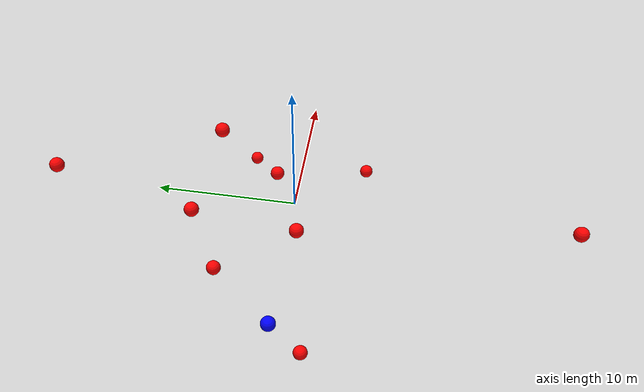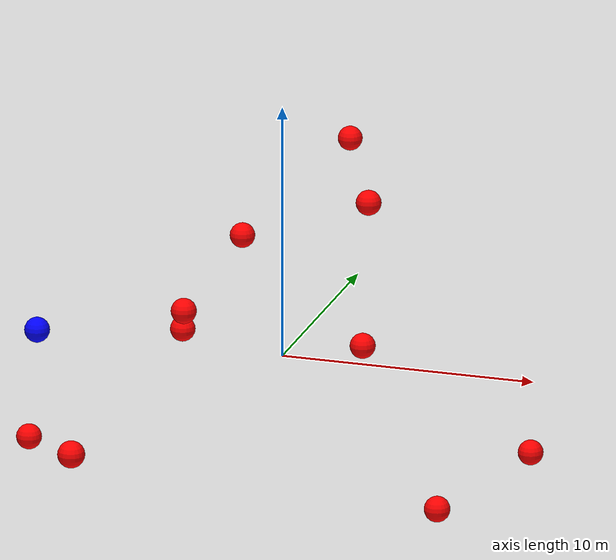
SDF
<?xml version="1.0" ?>
<sdf version="1.8">
    <world name="3d_world">
        <physics name="1ms" type="ode">
            <max_step_size>0.001</max_step_size>
            <real_time_factor>1.0</real_time_factor>
            <real_time_update_rate>1000.0</real_time_update_rate>
        </physics>
        <gravity>0 0 0</gravity>

        <plugin
            filename="gz-sim-physics-system"
            name="gz::sim::v8::systems::Physics">
        </plugin>
        <plugin
            filename="libignition-gazebo-user-commands-system.so"
            name="ignition::gazebo::systems::UserCommands">
        </plugin>
        <plugin
            filename="gz-sim-scene-broadcaster-system"
            name="gz::sim::systems::SceneBroadcaster">
        </plugin>
        <plugin
            filename="gz-sim-sensors-system"
            name="gz::sim::systems::Sensors">
            <render_engine>ogre2</render_engine>
        </plugin>

        <light type="directional" name="sun">
            <cast_shadows>true</cast_shadows>
            <pose>0 0 10 0 0 0</pose>
            <diffuse>0.8 0.8 0.8 1</diffuse>
            <specular>0.2 0.2 0.2 1</specular>
            <attenuation>
                <range>1000</range>
                <constant>0.9</constant>
                <linear>0.01</linear>
                <quadratic>0.001</quadratic>
            </attenuation>
            <direction>-0.5 0.1 -0.9</direction>
        </light>

        <!-- AGENTE -->
        <model name='agente' canonical_link='chassis'>
            <pose relative_to='world'>-10.0 0 0.0 0 0 0</pose>
            <link name='chassis'>
                <pose relative_to='__model__'>0.0 0 0.0 0 0 0</pose>
                <inertial>
                    <mass>1.14395</mass>
                    <inertia>
                        <ixx>0.095329</ixx>
                        <ixy>0</ixy>
                        <ixz>0</ixz>
                        <iyy>0.381317</iyy>
                        <iyz>0</iyz>
                        <izz>0.476646</izz>
                    </inertia>
                </inertial>
                <visual name='visual'>
                    <geometry>
                        <sphere>
                            <radius>0.5</radius>
                        </sphere>
                    </geometry>
                    <material>
                        <ambient>0.0 0.0 1.0 1</ambient>
                        <diffuse>0.0 0.0 1.0 1</diffuse>
                        <specular>0.0 0.0 1.0 1</specular>
                    </material>
                </visual>
                <collision name='collision'>
                    <geometry>
                        <sphere>
                            <radius>0.5</radius>
                        </sphere>
                    </geometry>
                </collision>
                <enable_gravity>false</enable_gravity>
            </link>

            <link name='lidar_link'>
                <pose relative_to='chassis'>0.0 0 0.1 0 0 0</pose>
                <inertial>
                    <mass>0.1</mass>
                    <inertia>
                        <ixx>0.000166667</ixx>
                        <iyy>0.000166667</iyy>
                        <izz>0.000166667</izz>
                    </inertia>
                </inertial>
                <collision name='collision'>
                    <geometry>
                        <cylinder>
                            <radius>0.05</radius>
                            <length>0.1</length>
                        </cylinder>
                    </geometry>
                </collision>
                <visual name='visual'>
                    <geometry>
                        <cylinder>
                            <radius>0.05</radius>
                            <length>0.1</length>
                        </cylinder>
                    </geometry>
                    <material>
                        <ambient>0.0 1.0 0.0 1</ambient>
                        <diffuse>0.0 1.0 0.0 1</diffuse>
                        <specular>0.0 1.0 0.0 1</specular>
                    </material>
                </visual>
                <sensor name="lidar" type="gpu_lidar">
                    <topic>scan</topic>
                    <update_rate>10</update_rate>
                    <lidar>
                        <scan>
                            <horizontal>
                                <samples>5000</samples>
                                <resolution>1</resolution>
                                <min_angle>-3.14159</min_angle>
                                <max_angle>3.14159</max_angle>
                            </horizontal>
                        </scan>
                        <range>
                            <min>0.1</min>
                            <max>10.0</max>
                            <resolution>0.01</resolution>
                        </range>
                    </lidar>
                    <visualize>true</visualize>
                    <always_on>true</always_on>
                    <update_rate>10</update_rate>
                    <pose_frame>lidar</pose_frame>
                </sensor>
                <enable_gravity>false</enable_gravity>
            </link>

            <joint name="lidar_joint" type="fixed">
                <parent>chassis</parent>
                <child>lidar_link</child>
            </joint>

            <plugin
                filename="ignition-gazebo-joint-state-publisher-system"
                name="ignition::gazebo::systems::JointStatePublisher">
            </plugin>
            <plugin
                filename="ignition-gazebo-odometry-publisher-system"
                name="ignition::gazebo::systems::OdometryPublisher">
                <dimensions>3</dimensions>
            </plugin>
            <plugin
                filename="ignition-gazebo-velocity-control-system"
                name="ignition::gazebo::systems::VelocityControl">
                <initial_linear>0.0 0 0</initial_linear>
                <initial_angular>0 0 0.0</initial_angular>
            </plugin>
            <plugin
                filename="libignition-gazebo-pose-publisher-system.so"
                name="ignition::gazebo::systems::PosePublisher">
                <topic>/agente/pose</topic>
                <frame_id>agente</frame_id>
                <update_rate>30</update_rate>
            </plugin>
        </model>

        <!-- OBSTACLE 1 -->
        <model name='obstacle_1' canonical_link='obstacle'>
            <static>false</static>
            <pose relative_to='world'>-2.12 15.94 3.63 0 0 0</pose>
            <link name='obstacle'>
                <pose relative_to='__model__'>0.0 0 0.0 0 0 0</pose>
                <visual name='visual'>
                    <geometry>
                        <sphere>
                            <radius>0.50</radius>
                        </sphere>
                    </geometry>
                    <material>
                        <ambient>1.0 0.0 0.0 1</ambient>
                        <diffuse>1.0 0.0 0.0 1</diffuse>
                        <specular>1.0 0.0 0.0 1</specular>
                    </material>
                </visual>
                <collision name='collision'>
                    <geometry>
                        <sphere>
                            <radius>0.50</radius>
                        </sphere>
                    </geometry>
                </collision>
                <enable_gravity>false</enable_gravity>
            </link>

            <plugin
                filename="ignition-gazebo-velocity-control-system"
                name="ignition::gazebo::systems::VelocityControl">
                <initial_linear>0.29 -1.93 -0.44</initial_linear>
                <initial_angular>0 0 0</initial_angular>
            </plugin>

            <plugin
                filename="ignition-gazebo-odometry-publisher-system"
                name="ignition::gazebo::systems::OdometryPublisher">
                <dimensions>3</dimensions>
            </plugin>
        </model>

        <!-- OBSTACLE 2 -->
        <model name='obstacle_2' canonical_link='obstacle'>
            <static>false</static>
            <pose relative_to='world'>-1.97 -19.01 2.62 0 0 0</pose>
            <link name='obstacle'>
                <pose relative_to='__model__'>0.0 0 0.0 0 0 0</pose>
                <visual name='visual'>
                    <geometry>
                        <sphere>
                            <radius>0.50</radius>
                        </sphere>
                    </geometry>
                    <material>
                        <ambient>1.0 0.0 0.0 1</ambient>
                        <diffuse>1.0 0.0 0.0 1</diffuse>
                        <specular>1.0 0.0 0.0 1</specular>
                    </material>
                </visual>
                <collision name='collision'>
                    <geometry>
                        <sphere>
                            <radius>0.50</radius>
                        </sphere>
                    </geometry>
                </collision>
                <enable_gravity>false</enable_gravity>
            </link>

            <plugin
                filename="ignition-gazebo-velocity-control-system"
                name="ignition::gazebo::systems::VelocityControl">
                <initial_linear>0.84 1.80 -0.25</initial_linear>
                <initial_angular>0 0 0</initial_angular>
            </plugin>

            <plugin
                filename="ignition-gazebo-odometry-publisher-system"
                name="ignition::gazebo::systems::OdometryPublisher">
                <dimensions>3</dimensions>
            </plugin>
        </model>

        <!-- OBSTACLE 3 -->
        <model name='obstacle_3' canonical_link='obstacle'>
            <static>false</static>
            <pose relative_to='world'>-5.60 4.72 -1.11 0 0 0</pose>
            <link name='obstacle'>
                <pose relative_to='__model__'>0.0 0 0.0 0 0 0</pose>
                <visual name='visual'>
                    <geometry>
                        <sphere>
                            <radius>0.50</radius>
                        </sphere>
                    </geometry>
                    <material>
                        <ambient>1.0 0.0 0.0 1</ambient>
                        <diffuse>1.0 0.0 0.0 1</diffuse>
                        <specular>1.0 0.0 0.0 1</specular>
                    </material>
                </visual>
                <collision name='collision'>
                    <geometry>
                        <sphere>
                            <radius>0.50</radius>
                        </sphere>
                    </geometry>
                </collision>
                <enable_gravity>false</enable_gravity>
            </link>

            <plugin
                filename="ignition-gazebo-velocity-control-system"
                name="ignition::gazebo::systems::VelocityControl">
                <initial_linear>0.95 -1.66 0.39</initial_linear>
                <initial_angular>0 0 0</initial_angular>
            </plugin>

            <plugin
                filename="ignition-gazebo-odometry-publisher-system"
                name="ignition::gazebo::systems::OdometryPublisher">
                <dimensions>3</dimensions>
            </plugin>
        </model>

        <!-- OBSTACLE 4 -->
        <model name='obstacle_4' canonical_link='obstacle'>
            <static>false</static>
            <pose relative_to='world'>-9.70 -1.94 -3.70 0 0 0</pose>
            <link name='obstacle'>
                <pose relative_to='__model__'>0.0 0 0.0 0 0 0</pose>
                <visual name='visual'>
                    <geometry>
                        <sphere>
                            <radius>0.50</radius>
                        </sphere>
                    </geometry>
                    <material>
                        <ambient>1.0 0.0 0.0 1</ambient>
                        <diffuse>1.0 0.0 0.0 1</diffuse>
                        <specular>1.0 0.0 0.0 1</specular>
                    </material>
                </visual>
                <collision name='collision'>
                    <geometry>
                        <sphere>
                            <radius>0.50</radius>
                        </sphere>
                    </geometry>
                </collision>
                <enable_gravity>false</enable_gravity>
            </link>

            <plugin
                filename="ignition-gazebo-velocity-control-system"
                name="ignition::gazebo::systems::VelocityControl">
                <initial_linear>1.70 0.49 0.94</initial_linear>
                <initial_angular>0 0 0</initial_angular>
            </plugin>

            <plugin
                filename="ignition-gazebo-odometry-publisher-system"
                name="ignition::gazebo::systems::OdometryPublisher">
                <dimensions>3</dimensions>
            </plugin>
        </model>

        <!-- OBSTACLE 5 -->
        <model name='obstacle_5' canonical_link='obstacle'>
            <static>false</static>
            <pose relative_to='world'>1.85 5.29 4.69 0 0 0</pose>
            <link name='obstacle'>
                <pose relative_to='__model__'>0.0 0 0.0 0 0 0</pose>
                <visual name='visual'>
                    <geometry>
                        <sphere>
                            <radius>0.50</radius>
                        </sphere>
                    </geometry>
                    <material>
                        <ambient>1.0 0.0 0.0 1</ambient>
                        <diffuse>1.0 0.0 0.0 1</diffuse>
                        <specular>1.0 0.0 0.0 1</specular>
                    </material>
                </visual>
                <collision name='collision'>
                    <geometry>
                        <sphere>
                            <radius>0.50</radius>
                        </sphere>
                    </geometry>
                </collision>
                <enable_gravity>false</enable_gravity>
            </link>

            <plugin
                filename="ignition-gazebo-velocity-control-system"
                name="ignition::gazebo::systems::VelocityControl">
                <initial_linear>-0.88 -1.34 -1.19</initial_linear>
                <initial_angular>0 0 0</initial_angular>
            </plugin>

            <plugin
                filename="ignition-gazebo-odometry-publisher-system"
                name="ignition::gazebo::systems::OdometryPublisher">
                <dimensions>3</dimensions>
            </plugin>
        </model>

        <!-- OBSTACLE 6 -->
        <model name='obstacle_6' canonical_link='obstacle'>
            <static>false</static>
            <pose relative_to='world'>-3.63 6.31 2.47 0 0 0</pose>
            <link name='obstacle'>
                <pose relative_to='__model__'>0.0 0 0.0 0 0 0</pose>
                <visual name='visual'>
                    <geometry>
                        <sphere>
                            <radius>0.50</radius>
                        </sphere>
                    </geometry>
                    <material>
                        <ambient>1.0 0.0 0.0 1</ambient>
                        <diffuse>1.0 0.0 0.0 1</diffuse>
                        <specular>1.0 0.0 0.0 1</specular>
                    </material>
                </visual>
                <collision name='collision'>
                    <geometry>
                        <sphere>
                            <radius>0.50</radius>
                        </sphere>
                    </geometry>
                </collision>
                <enable_gravity>false</enable_gravity>
            </link>

            <plugin
                filename="ignition-gazebo-velocity-control-system"
                name="ignition::gazebo::systems::VelocityControl">
                <initial_linear>0.15 -1.86 -0.73</initial_linear>
                <initial_angular>0 0 0</initial_angular>
            </plugin>

            <plugin
                filename="ignition-gazebo-odometry-publisher-system"
                name="ignition::gazebo::systems::OdometryPublisher">
                <dimensions>3</dimensions>
            </plugin>
        </model>

        <!-- OBSTACLE 7 -->
        <model name='obstacle_7' canonical_link='obstacle'>
            <static>false</static>
            <pose relative_to='world'>8.62 4.82 -4.75 0 0 0</pose>
            <link name='obstacle'>
                <pose relative_to='__model__'>0.0 0 0.0 0 0 0</pose>
                <visual name='visual'>
                    <geometry>
                        <sphere>
                            <radius>0.50</radius>
                        </sphere>
                    </geometry>
                    <material>
                        <ambient>1.0 0.0 0.0 1</ambient>
                        <diffuse>1.0 0.0 0.0 1</diffuse>
                        <specular>1.0 0.0 0.0 1</specular>
                    </material>
                </visual>
                <collision name='collision'>
                    <geometry>
                        <sphere>
                            <radius>0.50</radius>
                        </sphere>
                    </geometry>
                </collision>
                <enable_gravity>false</enable_gravity>
            </link>

            <plugin
                filename="ignition-gazebo-velocity-control-system"
                name="ignition::gazebo::systems::VelocityControl">
                <initial_linear>-1.47 -0.96 0.95</initial_linear>
                <initial_angular>0 0 0</initial_angular>
            </plugin>

            <plugin
                filename="ignition-gazebo-odometry-publisher-system"
                name="ignition::gazebo::systems::OdometryPublisher">
                <dimensions>3</dimensions>
            </plugin>
        </model>

        <!-- OBSTACLE 8 -->
        <model name='obstacle_8' canonical_link='obstacle'>
            <static>false</static>
            <pose relative_to='world'>2.68 1.78 0.08 0 0 0</pose>
            <link name='obstacle'>
                <pose relative_to='__model__'>0.0 0 0.0 0 0 0</pose>
                <visual name='visual'>
                    <geometry>
                        <sphere>
                            <radius>0.50</radius>
                        </sphere>
                    </geometry>
                    <material>
                        <ambient>1.0 0.0 0.0 1</ambient>
                        <diffuse>1.0 0.0 0.0 1</diffuse>
                        <specular>1.0 0.0 0.0 1</specular>
                    </material>
                </visual>
                <collision name='collision'>
                    <geometry>
                        <sphere>
                            <radius>0.50</radius>
                        </sphere>
                    </geometry>
                </collision>
                <enable_gravity>false</enable_gravity>
            </link>

            <plugin
                filename="ignition-gazebo-velocity-control-system"
                name="ignition::gazebo::systems::VelocityControl">
                <initial_linear>-1.94 -0.49 -0.02</initial_linear>
                <initial_angular>0 0 0</initial_angular>
            </plugin>

            <plugin
                filename="ignition-gazebo-odometry-publisher-system"
                name="ignition::gazebo::systems::OdometryPublisher">
                <dimensions>3</dimensions>
            </plugin>
        </model>

        <!-- OBSTACLE 9 -->
        <model name='obstacle_9' canonical_link='obstacle'>
            <static>false</static>
            <pose relative_to='world'>-3.74 -0.76 1.69 0 0 0</pose>
            <link name='obstacle'>
                <pose relative_to='__model__'>0.0 0 0.0 0 0 0</pose>
                <visual name='visual'>
                    <geometry>
                        <sphere>
                            <radius>0.50</radius>
                        </sphere>
                    </geometry>
                    <material>
                        <ambient>1.0 0.0 0.0 1</ambient>
                        <diffuse>1.0 0.0 0.0 1</diffuse>
                        <specular>1.0 0.0 0.0 1</specular>
                    </material>
                </visual>
                <collision name='collision'>
                    <geometry>
                        <sphere>
                            <radius>0.50</radius>
                        </sphere>
                    </geometry>
                </collision>
                <enable_gravity>false</enable_gravity>
            </link>

            <plugin
                filename="ignition-gazebo-velocity-control-system"
                name="ignition::gazebo::systems::VelocityControl">
                <initial_linear>1.35 0.14 -0.31</initial_linear>
                <initial_angular>0 0 0</initial_angular>
            </plugin>

            <plugin
                filename="ignition-gazebo-odometry-publisher-system"
                name="ignition::gazebo::systems::OdometryPublisher">
                <dimensions>3</dimensions>
            </plugin>
        </model>

        <!-- OBSTACLE 10 -->
        <model name='obstacle_10' canonical_link='obstacle'>
            <static>false</static>
            <pose relative_to='world'>7.53 -4.55 -3.76 0 0 0</pose>
            <link name='obstacle'>
                <pose relative_to='__model__'>0.0 0 0.0 0 0 0</pose>
                <visual name='visual'>
                    <geometry>
                        <sphere>
                            <radius>0.50</radius>
                        </sphere>
                    </geometry>
                    <material>
                        <ambient>1.0 0.0 0.0 1</ambient>
                        <diffuse>1.0 0.0 0.0 1</diffuse>
                        <specular>1.0 0.0 0.0 1</specular>
                    </material>
                </visual>
                <collision name='collision'>
                    <geometry>
                        <sphere>
                            <radius>0.50</radius>
                        </sphere>
                    </geometry>
                </collision>
                <enable_gravity>false</enable_gravity>
            </link>

            <plugin
                filename="ignition-gazebo-velocity-control-system"
                name="ignition::gazebo::systems::VelocityControl">
                <initial_linear>-1.77 0.72 0.59</initial_linear>
                <initial_angular>0 0 0</initial_angular>
            </plugin>

            <plugin
                filename="ignition-gazebo-odometry-publisher-system"
                name="ignition::gazebo::systems::OdometryPublisher">
                <dimensions>3</dimensions>
            </plugin>
        </model>

    </world>
</sdf>
